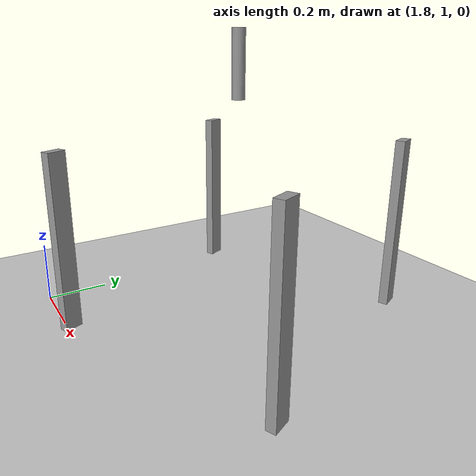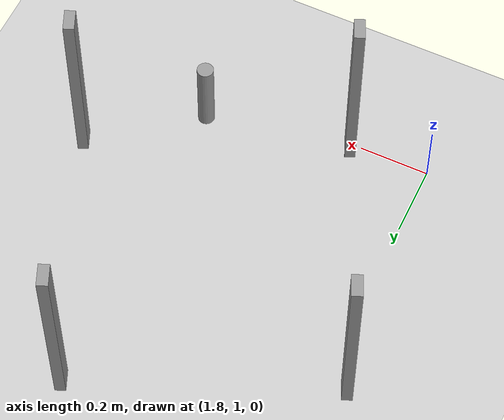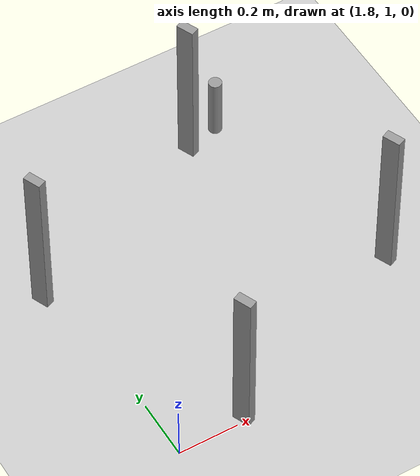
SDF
<sdf version="1.6">
 <world name="default">
  <light name="sun" type="directional">
   <pose>0 0 10 0 -0 0</pose>
   <diffuse>0.8 0.8 0.8 1</diffuse>
   <specular>0.1 0.1 0.1 1</specular>
   <attenuation>
    <range>1000</range>
    <constant>0.9</constant>
    <linear>0.01</linear>
    <quadratic>0.001</quadratic>
   </attenuation>
   <direction>-0.5 0.5 -1</direction>
  </light>
  <model name="ground_plane">
   <static>1</static>
   <link name="link">
    <collision name="collision">
     <geometry><plane><normal>0 0 1</normal><size>100 100</size></plane></geometry>
     <surface><friction><ode><mu>100</mu><mu2>50</mu2></ode></friction></surface>
    </collision>
    <visual name="visual">
     <cast_shadows>0</cast_shadows>
     <geometry><plane><normal>0 0 1</normal><size>100 100</size></plane></geometry>
     <material>
      <script><uri>file://media/materials/scripts/gazebo.material</uri><name>Gazebo/Grey</name></script>
     </material>
    </visual>
   </link>
  </model>
  <gravity>0 0 -9.8</gravity>
  <magnetic_field>6e-06 2.3e-05 -4.2e-05</magnetic_field>
  <atmosphere type="adiabatic"/>
  <physics type="ode">
   <max_step_size>0.01</max_step_size>
   <real_time_factor>1</real_time_factor>
   <real_time_update_rate>100</real_time_update_rate>
  </physics>
  <scene><ambient>0.4 0.4 0.4 1</ambient><background>0.7 0.7 0.7 1</background><shadows>1</shadows></scene>
  <spherical_coordinates>
   <surface_model>EARTH_WGS84</surface_model>
   <latitude_deg>0</latitude_deg>
   <longitude_deg>0</longitude_deg>
   <elevation>0</elevation>
   <heading_deg>0</heading_deg>
  </spherical_coordinates>
  <model name="Untitled_0">
   <link name="link_2">
    <pose>-0.3775 -0.38 -0.019 0 -0 0</pose>
    <inertial>
     <mass>1</mass>
     <inertia>
      <ixx>0.166667</ixx>
      <ixy>0</ixy>
      <ixz>0</ixz>
      <iyy>0.166667</iyy>
      <iyz>0</iyz>
      <izz>0.166667</izz>
     </inertia>
    </inertial>
    <visual name="visual">
     <geometry><box><size>0.03 0.06 0.57</size></box></geometry>
     <material>
      <lighting>1</lighting>
      <script><uri>file://media/materials/scripts/gazebo.material</uri><name>Gazebo/Grey</name></script>
      <ambient>0.3 0.3 0.3 1</ambient>
      <diffuse>0.7 0.7 0.7 1</diffuse>
      <specular>0.01 0.01 0.01 1</specular>
      <emissive>0 0 0 1</emissive>
      <shader type="vertex"><normal_map>__default__</normal_map></shader>
     </material>
    </visual>
    <collision name="collision">
     <geometry><box><size>0.03 0.06 0.57</size></box></geometry>
     <surface>
      <friction>
       <ode><mu>1</mu><mu2>1</mu2><fdir1>0 0 0</fdir1><slip1>0</slip1><slip2>0</slip2></ode>
       <torsional>
        <coefficient>1</coefficient>
        <patch_radius>0</patch_radius>
        <surface_radius>0</surface_radius>
        <use_patch_radius>1</use_patch_radius>
        <ode><slip>0</slip></ode>
       </torsional>
      </friction>
      <bounce><restitution_coefficient>0</restitution_coefficient><threshold>1e+06</threshold></bounce>
      <contact>
       <collide_without_contact>0</collide_without_contact>
       <collide_without_contact_bitmask>1</collide_without_contact_bitmask>
       <collide_bitmask>1</collide_bitmask>
       <ode>
        <soft_cfm>0</soft_cfm>
        <soft_erp>0.2</soft_erp>
        <kp>1e+13</kp>
        <kd>1</kd>
        <max_vel>0.01</max_vel>
        <min_depth>0</min_depth>
       </ode>
       <bullet>
        <split_impulse>1</split_impulse>
        <split_impulse_penetration_threshold>-0.01</split_impulse_penetration_threshold>
        <soft_cfm>0</soft_cfm>
        <soft_erp>0.2</soft_erp>
        <kp>1e+13</kp>
        <kd>1</kd>
       </bullet>
      </contact>
     </surface>
    </collision>
   </link>
   <link name="link_2_clone">
    <pose>0.3775 -0.38 -0.019 0 -0 0</pose>
    <inertial>
     <mass>1</mass>
     <inertia>
      <ixx>0.166667</ixx>
      <ixy>0</ixy>
      <ixz>0</ixz>
      <iyy>0.166667</iyy>
      <iyz>0</iyz>
      <izz>0.166667</izz>
     </inertia>
    </inertial>
    <visual name="visual">
     <geometry><box><size>0.03 0.06 0.57</size></box></geometry>
     <material>
      <lighting>1</lighting>
      <script><uri>file://media/materials/scripts/gazebo.material</uri><name>Gazebo/Grey</name></script>
      <ambient>0.3 0.3 0.3 1</ambient>
      <diffuse>0.7 0.7 0.7 1</diffuse>
      <specular>0.01 0.01 0.01 1</specular>
      <emissive>0 0 0 1</emissive>
      <shader type="vertex"><normal_map>__default__</normal_map></shader>
     </material>
    </visual>
    <collision name="collision">
     <geometry><box><size>0.03 0.06 0.57</size></box></geometry>
     <surface>
      <friction>
       <ode><mu>1</mu><mu2>1</mu2><fdir1>0 0 0</fdir1><slip1>0</slip1><slip2>0</slip2></ode>
       <torsional>
        <coefficient>1</coefficient>
        <patch_radius>0</patch_radius>
        <surface_radius>0</surface_radius>
        <use_patch_radius>1</use_patch_radius>
        <ode><slip>0</slip></ode>
       </torsional>
      </friction>
      <bounce><restitution_coefficient>0</restitution_coefficient><threshold>1e+06</threshold></bounce>
      <contact>
       <collide_without_contact>0</collide_without_contact>
       <collide_without_contact_bitmask>1</collide_without_contact_bitmask>
       <collide_bitmask>1</collide_bitmask>
       <ode>
        <soft_cfm>0</soft_cfm>
        <soft_erp>0.2</soft_erp>
        <kp>1e+13</kp>
        <kd>1</kd>
        <max_vel>0.01</max_vel>
        <min_depth>0</min_depth>
       </ode>
       <bullet>
        <split_impulse>1</split_impulse>
        <split_impulse_penetration_threshold>-0.01</split_impulse_penetration_threshold>
        <soft_cfm>0</soft_cfm>
        <soft_erp>0.2</soft_erp>
        <kp>1e+13</kp>
        <kd>1</kd>
       </bullet>
      </contact>
     </surface>
    </collision>
   </link>
   <link name="link_2_clone_0">
    <pose>-0.3775 0.38 -0.019 0 -0 0</pose>
    <inertial>
     <mass>1</mass>
     <inertia>
      <ixx>0.166667</ixx>
      <ixy>0</ixy>
      <ixz>0</ixz>
      <iyy>0.166667</iyy>
      <iyz>0</iyz>
      <izz>0.166667</izz>
     </inertia>
    </inertial>
    <visual name="visual">
     <geometry><box><size>0.03 0.06 0.57</size></box></geometry>
     <material>
      <lighting>1</lighting>
      <script><uri>file://media/materials/scripts/gazebo.material</uri><name>Gazebo/Grey</name></script>
      <ambient>0.3 0.3 0.3 1</ambient>
      <diffuse>0.7 0.7 0.7 1</diffuse>
      <specular>0.01 0.01 0.01 1</specular>
      <emissive>0 0 0 1</emissive>
      <shader type="vertex"><normal_map>__default__</normal_map></shader>
     </material>
    </visual>
    <collision name="collision">
     <geometry><box><size>0.03 0.06 0.57</size></box></geometry>
     <surface>
      <friction>
       <ode><mu>1</mu><mu2>1</mu2><fdir1>0 0 0</fdir1><slip1>0</slip1><slip2>0</slip2></ode>
       <torsional>
        <coefficient>1</coefficient>
        <patch_radius>0</patch_radius>
        <surface_radius>0</surface_radius>
        <use_patch_radius>1</use_patch_radius>
        <ode><slip>0</slip></ode>
       </torsional>
      </friction>
      <bounce><restitution_coefficient>0</restitution_coefficient><threshold>1e+06</threshold></bounce>
      <contact>
       <collide_without_contact>0</collide_without_contact>
       <collide_without_contact_bitmask>1</collide_without_contact_bitmask>
       <collide_bitmask>1</collide_bitmask>
       <ode>
        <soft_cfm>0</soft_cfm>
        <soft_erp>0.2</soft_erp>
        <kp>1e+13</kp>
        <kd>1</kd>
        <max_vel>0.01</max_vel>
        <min_depth>0</min_depth>
       </ode>
       <bullet>
        <split_impulse>1</split_impulse>
        <split_impulse_penetration_threshold>-0.01</split_impulse_penetration_threshold>
        <soft_cfm>0</soft_cfm>
        <soft_erp>0.2</soft_erp>
        <kp>1e+13</kp>
        <kd>1</kd>
       </bullet>
      </contact>
     </surface>
    </collision>
   </link>
   <link name="link_2_clone_clone">
    <pose>0.3775 0.38 -0.019 0 -0 0</pose>
    <inertial>
     <mass>1</mass>
     <inertia>
      <ixx>0.166667</ixx>
      <ixy>0</ixy>
      <ixz>0</ixz>
      <iyy>0.166667</iyy>
      <iyz>0</iyz>
      <izz>0.166667</izz>
     </inertia>
    </inertial>
    <visual name="visual">
     <geometry><box><size>0.03 0.06 0.57</size></box></geometry>
     <material>
      <lighting>1</lighting>
      <script><uri>file://media/materials/scripts/gazebo.material</uri><name>Gazebo/Grey</name></script>
      <ambient>0.3 0.3 0.3 1</ambient>
      <diffuse>0.7 0.7 0.7 1</diffuse>
      <specular>0.01 0.01 0.01 1</specular>
      <emissive>0 0 0 1</emissive>
      <shader type="vertex"><normal_map>__default__</normal_map></shader>
     </material>
    </visual>
    <collision name="collision">
     <geometry><box><size>0.03 0.06 0.57</size></box></geometry>
     <surface>
      <friction>
       <ode><mu>1</mu><mu2>1</mu2><fdir1>0 0 0</fdir1><slip1>0</slip1><slip2>0</slip2></ode>
       <torsional>
        <coefficient>1</coefficient>
        <patch_radius>0</patch_radius>
        <surface_radius>0</surface_radius>
        <use_patch_radius>1</use_patch_radius>
        <ode><slip>0</slip></ode>
       </torsional>
      </friction>
      <bounce><restitution_coefficient>0</restitution_coefficient><threshold>1e+06</threshold></bounce>
      <contact>
       <collide_without_contact>0</collide_without_contact>
       <collide_without_contact_bitmask>1</collide_without_contact_bitmask>
       <collide_bitmask>1</collide_bitmask>
       <ode>
        <soft_cfm>0</soft_cfm>
        <soft_erp>0.2</soft_erp>
        <kp>1e+13</kp>
        <kd>1</kd>
        <max_vel>0.01</max_vel>
        <min_depth>0</min_depth>
       </ode>
       <bullet>
        <split_impulse>1</split_impulse>
        <split_impulse_penetration_threshold>-0.01</split_impulse_penetration_threshold>
        <soft_cfm>0</soft_cfm>
        <soft_erp>0.2</soft_erp>
        <kp>1e+13</kp>
        <kd>1</kd>
       </bullet>
      </contact>
     </surface>
    </collision>
   </link>
   <link name="link_4">
    <pose>0 0 0.5 0 -0 0</pose>
    <inertial>
     <mass>1</mass>
     <inertia><ixx>0.145833</ixx><ixy>0</ixy><ixz>0</ixz><iyy>0.145833</iyy><iyz>0</iyz><izz>0.125</izz></inertia>
    </inertial>
    <visual name="visual">
     <geometry><cylinder><radius>0.02</radius><length>0.2</length></cylinder></geometry>
     <material>
      <lighting>1</lighting>
      <script><uri>file://media/materials/scripts/gazebo.material</uri><name>Gazebo/Grey</name></script>
      <ambient>0.3 0.3 0.3 1</ambient>
      <diffuse>0.7 0.7 0.7 1</diffuse>
      <specular>0.01 0.01 0.01 1</specular>
      <emissive>0 0 0 1</emissive>
      <shader type="vertex"><normal_map>__default__</normal_map></shader>
     </material>
    </visual>
    <collision name="collision">
     <geometry><cylinder><radius>0.02</radius><length>0.2</length></cylinder></geometry>
     <surface>
      <friction>
       <ode><mu>1</mu><mu2>1</mu2><fdir1>0 0 0</fdir1><slip1>0</slip1><slip2>0</slip2></ode>
       <torsional>
        <coefficient>1</coefficient>
        <patch_radius>0</patch_radius>
        <surface_radius>0</surface_radius>
        <use_patch_radius>1</use_patch_radius>
        <ode><slip>0</slip></ode>
       </torsional>
      </friction>
      <bounce><restitution_coefficient>0</restitution_coefficient><threshold>1e+06</threshold></bounce>
      <contact>
       <collide_without_contact>0</collide_without_contact>
       <collide_without_contact_bitmask>1</collide_without_contact_bitmask>
       <collide_bitmask>1</collide_bitmask>
       <ode>
        <soft_cfm>0</soft_cfm>
        <soft_erp>0.2</soft_erp>
        <kp>1e+13</kp>
        <kd>1</kd>
        <max_vel>0.01</max_vel>
        <min_depth>0</min_depth>
       </ode>
       <bullet>
        <split_impulse>1</split_impulse>
        <split_impulse_penetration_threshold>-0.01</split_impulse_penetration_threshold>
        <soft_cfm>0</soft_cfm>
        <soft_erp>0.2</soft_erp>
        <kp>1e+13</kp>
        <kd>1</kd>
       </bullet>
      </contact>
     </surface>
    </collision>
   </link>
   <joint name="link_4_JOINT_0" type="fixed">
    <parent>link_4</parent>
    <child>link_2</child>
    <physics>
     <ode><limit><cfm>0</cfm><erp>0.2</erp></limit><suspension><cfm>0</cfm><erp>0.2</erp></suspension></ode>
    </physics>
   </joint>
   <joint name="link_4_JOINT_1" type="fixed">
    <parent>link_4</parent>
    <child>link_2_clone_0</child>
    <physics>
     <ode><limit><cfm>0</cfm><erp>0.2</erp></limit><suspension><cfm>0</cfm><erp>0.2</erp></suspension></ode>
    </physics>
   </joint>
   <joint name="link_4_JOINT_2" type="fixed">
    <parent>link_4</parent>
    <child>link_2_clone_clone</child>
    <physics>
     <ode><limit><cfm>0</cfm><erp>0.2</erp></limit><suspension><cfm>0</cfm><erp>0.2</erp></suspension></ode>
    </physics>
   </joint>
   <joint name="link_4_JOINT_3" type="fixed">
    <parent>link_4</parent>
    <child>link_2_clone</child>
    <physics>
     <ode><limit><cfm>0</cfm><erp>0.2</erp></limit><suspension><cfm>0</cfm><erp>0.2</erp></suspension></ode>
    </physics>
   </joint>
   <static>0</static>
   <pose>2.22808 1.51093 0.304 0 -0 0.40413</pose>
  </model>
 </world>
</sdf>
